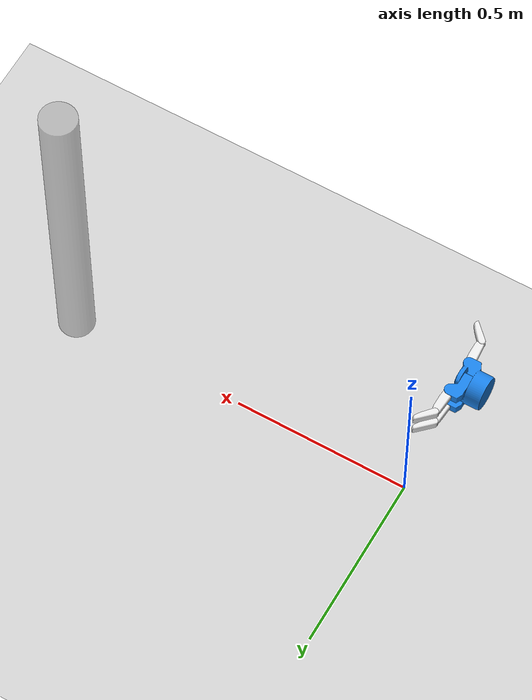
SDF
<?xml version="1.0"?>
<sdf version='1.6'>
  <world name='cylinder'>
    <gravity>0 0 -9.8</gravity>
    <physics type="ode">
      <max_contacts>40</max_contacts>
      <max_step_size>0.001</max_step_size>
      <real_time_factor>0.0</real_time_factor>
      <ode>
        <solver>
          <type>quick</type>
          <iters>40</iters>
          <sor>1.2</sor>
        </solver>
        <constraints>
          <cfm>0</cfm>
          <erp>0.2</erp>
          <contact_max_correcting_vel>1000</contact_max_correcting_vel>
          <contact_surface_layer>0.0</contact_surface_layer>
        </constraints>
      </ode>
    </physics>

    <include>
      <uri>model://ground_plane</uri>
    </include>

    <include>
      <uri>model://sun</uri>
    </include>

    <include>
      <uri>model://barrett</uri>
      <pose>-0.2 0 0.7 0 1.57079632679 0</pose>
    </include>

    <include>
      <uri>model://cylinder</uri>
      <pose>1 0 0.5 0 0 0</pose>
    </include>

    <plugin name="world_plugin" filename="libworld_plugin.so"/>
  </world>
</sdf>

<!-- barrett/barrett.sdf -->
<sdf version='1.6'>
  <model name='barrett'>
    <link name='palm_link'>
      <kinematic>true</kinematic>
      <pose frame=''>0 0 0 0 -0 -3.14159</pose>
      <inertial>
        <pose frame=''>-5.1e-05 0.005043 0.036674 0 -0 0</pose>
        <mass>0.50575</mass>
        <inertia>
          <ixx>4.04627e-05</ixx>
          <ixy>-5.60348e-08</ixy>
          <ixz>-4.20341e-05</ixz>
          <iyy>0.000226138</iyy>
          <iyz>1.39217e-07</iyz>
          <izz>0.000202451</izz>
        </inertia>
      </inertial>
      <collision name='palm_link_collision'>
        <pose frame=''>0 0 0 0 -0 0</pose>
        <geometry>
          <mesh>
            <scale>1 1 1</scale>
            <uri>model://barrett/mesh/palm_convex.dae</uri>
          </mesh>
        </geometry>
        <surface>
          <contact>
            <ode>
              <kp>1000000</kp>
              <kd>100</kd>
            </ode>
          </contact>
          <friction>
            <ode>
              <mu>0.5</mu>
              <mu2>0.5</mu2>
            </ode>
          </friction>
        </surface>
      </collision>
      <visual name='palm_link_visual'>
        <pose frame=''>0 0 0 0 -0 0</pose>
        <geometry>
          <mesh>
            <scale>1 1 1</scale>
            <uri>model://barrett/mesh/palm_fine.stl</uri>
          </mesh>
        </geometry>
        <material>
          <ambient>0.3 0.3 0.3 1</ambient>
          <diffuse>0.1 0.5 0.9 1</diffuse>
          <specular>0.5 0.5 0.5 1</specular>
          <script>
            <uri>__default__</uri>
            <name>__default__</name>
          </script>
        </material>
      </visual>
      <gravity>0</gravity>
      <self_collide>0</self_collide>
    </link>
    <link name='finger_1_prox_link'>
      <pose frame=''>0.025 0 0.0415 0 -0 1.5708</pose>
      <inertial>
        <pose frame=''>0.023133 0.000786 0.000528 0 -0 0</pose>
        <mass>0.14109</mass>
        <inertia>
          <ixx>4.872e-06</ixx>
          <ixy>1.7103e-06</ixy>
          <ixz>3.4041e-08</ixz>
          <iyy>7.6588e-05</iyy>
          <iyz>2.3133e-08</iyz>
          <izz>7.7733e-05</izz>
        </inertia>
      </inertial>
      <collision name='finger_1_prox_link_collision'>
        <pose frame=''>0 0 0 0 -0 0</pose>
        <geometry>
          <mesh>
            <scale>1 1 1</scale>
            <uri>model://barrett/mesh/finger_prox_link_convex.dae</uri>
          </mesh>
        </geometry>
        <surface>
          <contact>
            <ode>
              <kp>1000000</kp>
              <kd>100</kd>
            </ode>
          </contact>
          <friction>
            <ode>
              <mu>0.5</mu>
              <mu2>0.5</mu2>
            </ode>
          </friction>
        </surface>
      </collision>
      <visual name='finger_1_prox_link_visual'>
        <pose frame=''>0 0 0 0 -0 0</pose>
        <geometry>
          <mesh>
            <scale>1 1 1</scale>
            <uri>model://barrett/mesh/finger_prox_link_fine.stl</uri>
          </mesh>
        </geometry>
        <material>
          <ambient>0.3 0.3 0.3 1</ambient>
          <diffuse>0.1 0.5 0.9 1</diffuse>
          <specular>0.5 0.5 0.5 1</specular>
          <script>
            <uri>__default__</uri>
            <name>__default__</name>
          </script>
        </material>
      </visual>
      <gravity>0</gravity>
      <self_collide>1</self_collide>
    </link>
    <joint name='finger_1_prox_joint' type='revolute'>
      <child>finger_1_prox_link</child>
      <parent>palm_link</parent>
      <axis>
        <xyz>0 0 -1</xyz>
        <limit>
          <lower>0</lower>
          <upper>3.14159</upper>
          <effort>5</effort>
          <velocity>10</velocity>
        </limit>
        <dynamics>
          <damping>0.35</damping>
          <friction>0</friction>
          <spring_reference>0</spring_reference>
          <spring_stiffness>0</spring_stiffness>
        </dynamics>
        <use_parent_model_frame>1</use_parent_model_frame>
      </axis>
      <physics>
        <ode>
          <provide_feedback>0</provide_feedback>
          <implicit_spring_damper>1</implicit_spring_damper>
          <cfm_damping>1</cfm_damping>
          <limit>
            <cfm>0</cfm>
            <erp>0.2</erp>
          </limit>
        </ode>
      </physics>
    </joint>
    <link name='finger_1_med_link'>
      <pose frame=''>0.025 0.05 0.0754 1.5708 -0 1.5708</pose>
      <inertial>
        <pose frame=''>0.023133 0.000786 0.000528 0 -0 0</pose>
        <mass>0.062139</mass>
        <inertia>
          <ixx>4.872e-06</ixx>
          <ixy>1.7103e-06</ixy>
          <ixz>3.4041e-08</ixz>
          <iyy>7.6588e-05</iyy>
          <iyz>2.3133e-08</iyz>
          <izz>7.7733e-05</izz>
        </inertia>
      </inertial>
      <collision name='finger_1_med_link_collision'>
        <pose frame=''>0 0 0 0 -0 0</pose>
        <geometry>
          <mesh>
            <scale>1 1 1</scale>
            <uri>model://barrett/mesh/finger_med_link_convex.dae</uri>
          </mesh>
        </geometry>
        <surface>
          <contact>
            <ode>
              <kp>1000000</kp>
              <kd>100</kd>
            </ode>
          </contact>
          <friction>
            <ode>
              <mu>0.5</mu>
              <mu2>0.5</mu2>
            </ode>
          </friction>
        </surface>
      </collision>
      <visual name='finger_1_med_link_visual'>
        <pose frame=''>0 0 0 0 -0 0</pose>
        <geometry>
          <mesh>
            <scale>1 1 1</scale>
            <uri>model://barrett/mesh/finger_med_link_fine.stl</uri>
          </mesh>
        </geometry>
        <material>
          <ambient>0.7 0.7 0.7 1</ambient>
          <diffuse>0.9 0.9 0.9 1</diffuse>
          <specular>0.5 0.5 0.5 0.3</specular>
          <emissive>0 0 0 0</emissive>
          <script>
            <uri>__default__</uri>
            <name>__default__</name>
          </script>
        </material>
      </visual>
      <gravity>0</gravity>
      <self_collide>1</self_collide>
    </link>
    <joint name='finger_1_med_joint' type='revolute'>
      <child>finger_1_med_link</child>
      <parent>finger_1_prox_link</parent>
      <axis>
        <xyz>1 0 0</xyz>
        <limit>
          <lower>0</lower>
          <upper>2.44346</upper>
          <effort>30</effort>
          <velocity>10</velocity>
        </limit>
        <dynamics>
          <damping>0.35</damping>
          <friction>0</friction>
          <spring_reference>0</spring_reference>
          <spring_stiffness>0</spring_stiffness>
        </dynamics>
        <use_parent_model_frame>1</use_parent_model_frame>
      </axis>
      <physics>
        <ode>
          <provide_feedback>0</provide_feedback>
          <implicit_spring_damper>1</implicit_spring_damper>
          <cfm_damping>1</cfm_damping>
          <limit>
            <cfm>0</cfm>
            <erp>0.2</erp>
          </limit>
        </ode>
      </physics>
    </joint>
    <link name='finger_1_dist_link'>
      <pose frame=''>0.025 0.11994 0.0784 1.5708 -0.785398 1.5708</pose>
      <inertial>
        <pose frame=''>0.022826 0.001049 0.00042 0 -0 0</pose>
        <mass>0.041378</mass>
        <inertia>
          <ixx>4.1582e-06</ixx>
          <ixy>1.43083e-06</ixy>
          <ixz>1.01071e-07</ixz>
          <iyy>3.93767e-05</iyy>
          <iyz>-4.40926e-13</iyz>
          <izz>3.82757e-05</izz>
        </inertia>
      </inertial>
      <collision name='finger_1_dist_link_collision'>
        <pose frame=''>0 0 0 0 0 -0.785398</pose>
        <geometry>
          <mesh>
            <scale>1 1 1</scale>
            <uri>model://barrett/mesh/finger_dist_link_convex.dae</uri>
          </mesh>
        </geometry>
        <surface>
          <contact>
            <ode>
              <kp>1000000</kp>
              <kd>100</kd>
            </ode>
          </contact>
          <friction>
            <ode>
              <mu>0.5</mu>
              <mu2>0.5</mu2>
            </ode>
          </friction>
        </surface>
      </collision>
      <visual name='finger_1_dist_link_visual'>
        <pose frame=''>0 0 0 0 0 -0.785398</pose>
        <geometry>
          <mesh>
            <scale>1 1 1</scale>
            <uri>model://barrett/mesh/finger_dist_link_fine.stl</uri>
          </mesh>
        </geometry>
        <material>
          <ambient>0.7 0.7 0.7 1</ambient>
          <diffuse>0.9 0.9 0.9 1</diffuse>
          <specular>0.5 0.5 0.5 0.3</specular>
          <emissive>0 0 0 0</emissive>
          <script>
            <uri>__default__</uri>
            <name>__default__</name>
          </script>
        </material>
      </visual>
      <gravity>0</gravity>
      <self_collide>1</self_collide>
    </link>
    <joint name='finger_1_dist_joint' type='revolute'>
      <child>finger_1_dist_link</child>
      <parent>finger_1_med_link</parent>
      <axis>
        <xyz>1 0 0</xyz>
        <limit>
          <lower>0</lower>
          <upper>0.837758</upper>
          <effort>30</effort>
          <velocity>10</velocity>
        </limit>
        <dynamics>
          <damping>0.35</damping>
          <friction>1</friction>
          <spring_reference>0</spring_reference>
          <spring_stiffness>0</spring_stiffness>
        </dynamics>
        <use_parent_model_frame>1</use_parent_model_frame>
      </axis>
      <physics>
        <ode>
          <provide_feedback>0</provide_feedback>
          <implicit_spring_damper>1</implicit_spring_damper>
          <cfm_damping>1</cfm_damping>
          <limit>
            <cfm>0</cfm>
            <erp>0.2</erp>
          </limit>
        </ode>
      </physics>
    </joint>
    <link name='finger_2_prox_link'>
      <pose frame=''>-0.025 -0 0.0415 0 -0 1.5708</pose>
      <inertial>
        <pose frame=''>0.023133 0.000786 0.000528 0 -0 0</pose>
        <mass>0.14109</mass>
        <inertia>
          <ixx>4.872e-06</ixx>
          <ixy>1.7103e-06</ixy>
          <ixz>3.4041e-08</ixz>
          <iyy>7.6588e-05</iyy>
          <iyz>2.3133e-08</iyz>
          <izz>7.7733e-05</izz>
        </inertia>
      </inertial>
      <collision name='finger_2_prox_link_collision'>
        <pose frame=''>0 0 0 0 -0 0</pose>
        <geometry>
          <mesh>
            <scale>1 1 1</scale>
            <uri>model://barrett/mesh/finger_prox_link_convex.dae</uri>
          </mesh>
        </geometry>
        <surface>
          <contact>
            <ode>
              <kp>1000000</kp>
              <kd>100</kd>
            </ode>
          </contact>
          <friction>
            <ode>
              <mu>0.5</mu>
              <mu2>0.5</mu2>
            </ode>
          </friction>
        </surface>
      </collision>
      <visual name='finger_2_prox_link_visual'>
        <pose frame=''>0 0 0 0 -0 0</pose>
        <geometry>
          <mesh>
            <scale>1 1 1</scale>
            <uri>model://barrett/mesh/finger_prox_link_fine.stl</uri>
          </mesh>
        </geometry>
        <material>
          <ambient>0.3 0.3 0.3 1</ambient>
          <diffuse>0.1 0.5 0.9 1</diffuse>
          <specular>0.5 0.5 0.5 1</specular>
          <script>
            <uri>__default__</uri>
            <name>__default__</name>
          </script>
        </material>
      </visual>
      <gravity>0</gravity>
      <self_collide>1</self_collide>
    </link>
    <joint name='finger_2_prox_joint' type='revolute'>
      <child>finger_2_prox_link</child>
      <parent>palm_link</parent>
      <axis>
        <xyz>0 0 1</xyz>
        <limit>
          <lower>0</lower>
          <upper>3.14159</upper>
          <effort>5</effort>
          <velocity>10</velocity>
        </limit>
        <dynamics>
          <damping>0.35</damping>
          <friction>0</friction>
          <spring_reference>0</spring_reference>
          <spring_stiffness>0</spring_stiffness>
        </dynamics>
        <use_parent_model_frame>1</use_parent_model_frame>
      </axis>
      <physics>
        <ode>
          <provide_feedback>0</provide_feedback>
          <implicit_spring_damper>1</implicit_spring_damper>
          <cfm_damping>1</cfm_damping>
          <limit>
            <cfm>0</cfm>
            <erp>0.2</erp>
          </limit>
        </ode>
      </physics>
    </joint>
    <link name='finger_2_med_link'>
      <pose frame=''>-0.025 0.05 0.0754 1.5708 -0 1.5708</pose>
      <inertial>
        <pose frame=''>0.023133 0.000786 0.000528 0 -0 0</pose>
        <mass>0.062139</mass>
        <inertia>
          <ixx>4.872e-06</ixx>
          <ixy>1.7103e-06</ixy>
          <ixz>3.4041e-08</ixz>
          <iyy>7.6588e-05</iyy>
          <iyz>2.3133e-08</iyz>
          <izz>7.7733e-05</izz>
        </inertia>
      </inertial>
      <collision name='finger_2_med_link_collision'>
        <pose frame=''>0 0 0 0 -0 0</pose>
        <geometry>
          <mesh>
            <scale>1 1 1</scale>
            <uri>model://barrett/mesh/finger_med_link_convex.dae</uri>
          </mesh>
        </geometry>
        <surface>
          <contact>
            <ode>
              <kp>1000000</kp>
              <kd>100</kd>
            </ode>
          </contact>
          <friction>
            <ode>
              <mu>0.5</mu>
              <mu2>0.5</mu2>
            </ode>
          </friction>
        </surface>
      </collision>
      <visual name='finger_2_med_link_visual'>
        <pose frame=''>0 0 0 0 -0 0</pose>
        <geometry>
          <mesh>
            <scale>1 1 1</scale>
            <uri>model://barrett/mesh/finger_med_link_fine.stl</uri>
          </mesh>
        </geometry>
        <material>
          <ambient>0.7 0.7 0.7 1</ambient>
          <diffuse>0.9 0.9 0.9 1</diffuse>
          <specular>0.5 0.5 0.5 0.3</specular>
          <emissive>0 0 0 0</emissive>
          <script>
            <uri>__default__</uri>
            <name>__default__</name>
          </script>
        </material>
      </visual>
      <gravity>0</gravity>
      <self_collide>1</self_collide>
    </link>
    <joint name='finger_2_med_joint' type='revolute'>
      <child>finger_2_med_link</child>
      <parent>finger_2_prox_link</parent>
      <axis>
        <xyz>1 0 0</xyz>
        <limit>
          <lower>0</lower>
          <upper>2.44346</upper>
          <effort>30</effort>
          <velocity>10</velocity>
        </limit>
        <dynamics>
          <damping>0.35</damping>
          <friction>0</friction>
          <spring_reference>0</spring_reference>
          <spring_stiffness>0</spring_stiffness>
        </dynamics>
        <use_parent_model_frame>1</use_parent_model_frame>
      </axis>
      <physics>
        <ode>
          <provide_feedback>0</provide_feedback>
          <implicit_spring_damper>1</implicit_spring_damper>
          <cfm_damping>1</cfm_damping>
          <limit>
            <cfm>0</cfm>
            <erp>0.2</erp>
          </limit>
        </ode>
      </physics>
    </joint>
    <link name='finger_2_dist_link'>
      <pose frame=''>-0.025 0.11994 0.0784 1.5708 -0.785398 1.5708</pose>
      <inertial>
        <pose frame=''>0.022826 0.001049 0.00042 0 -0 0</pose>
        <mass>0.041378</mass>
        <inertia>
          <ixx>4.1582e-06</ixx>
          <ixy>1.43083e-06</ixy>
          <ixz>1.01071e-07</ixz>
          <iyy>3.93767e-05</iyy>
          <iyz>-4.40926e-13</iyz>
          <izz>3.82757e-05</izz>
        </inertia>
      </inertial>
      <collision name='finger_2_dist_link_collision'>
        <pose frame=''>0 0 0 0 0 -0.785398</pose>
        <geometry>
          <mesh>
            <scale>1 1 1</scale>
            <uri>model://barrett/mesh/finger_dist_link_convex.dae</uri>
          </mesh>
        </geometry>
        <surface>
          <contact>
            <ode>
              <kp>1000000</kp>
              <kd>100</kd>
            </ode>
          </contact>
          <friction>
            <ode>
              <mu>0.5</mu>
              <mu2>0.5</mu2>
            </ode>
          </friction>
        </surface>
      </collision>
      <visual name='finger_2_dist_link_visual'>
        <pose frame=''>0 0 0 0 0 -0.785398</pose>
        <geometry>
          <mesh>
            <scale>1 1 1</scale>
            <uri>model://barrett/mesh/finger_dist_link_fine.stl</uri>
          </mesh>
        </geometry>
        <material>
          <ambient>0.7 0.7 0.7 1</ambient>
          <diffuse>0.9 0.9 0.9 1</diffuse>
          <specular>0.5 0.5 0.5 0.3</specular>
          <emissive>0 0 0 0</emissive>
          <script>
            <uri>__default__</uri>
            <name>__default__</name>
          </script>
        </material>
      </visual>
      <gravity>0</gravity>
      <self_collide>1</self_collide>
    </link>
    <joint name='finger_2_dist_joint' type='revolute'>
      <child>finger_2_dist_link</child>
      <parent>finger_2_med_link</parent>
      <axis>
        <xyz>1 0 0</xyz>
        <limit>
          <lower>0</lower>
          <upper>0.837758</upper>
          <effort>30</effort>
          <velocity>10</velocity>
        </limit>
        <dynamics>
          <damping>0.35</damping>
          <friction>1</friction>
          <spring_reference>0</spring_reference>
          <spring_stiffness>0</spring_stiffness>
        </dynamics>
        <use_parent_model_frame>1</use_parent_model_frame>
      </axis>
      <physics>
        <ode>
          <provide_feedback>0</provide_feedback>
          <implicit_spring_damper>1</implicit_spring_damper>
          <cfm_damping>1</cfm_damping>
          <limit>
            <cfm>0</cfm>
            <erp>0.2</erp>
          </limit>
        </ode>
      </physics>
    </joint>
    <link name='finger_3_med_link'>
      <pose frame=''>0 -0.05 0.0754 1.5708 -0 -1.5708</pose>
      <inertial>
        <pose frame=''>0.023133 0.000786 0.000528 0 -0 0</pose>
        <mass>0.062139</mass>
        <inertia>
          <ixx>4.872e-06</ixx>
          <ixy>1.7103e-06</ixy>
          <ixz>3.4041e-08</ixz>
          <iyy>7.6588e-05</iyy>
          <iyz>2.3133e-08</iyz>
          <izz>7.7733e-05</izz>
        </inertia>
      </inertial>
      <collision name='finger_3_med_link_collision'>
        <pose frame=''>0 0 0 0 -0 0</pose>
        <geometry>
          <mesh>
            <scale>1 1 1</scale>
            <uri>model://barrett/mesh/finger_med_link_convex.dae</uri>
          </mesh>
        </geometry>
        <surface>
          <contact>
            <ode>
              <kp>1000000</kp>
              <kd>100</kd>
            </ode>
          </contact>
          <friction>
            <ode>
              <mu>0.5</mu>
              <mu2>0.5</mu2>
            </ode>
          </friction>
        </surface>
      </collision>
      <visual name='finger_3_med_link_visual'>
        <pose frame=''>0 0 0 0 -0 0</pose>
        <geometry>
          <mesh>
            <scale>1 1 1</scale>
            <uri>model://barrett/mesh/finger_med_link_fine.stl</uri>
          </mesh>
        </geometry>
        <material>
          <ambient>0.7 0.7 0.7 1</ambient>
          <diffuse>0.9 0.9 0.9 1</diffuse>
          <specular>0.5 0.5 0.5 0.3</specular>
          <emissive>0 0 0 0</emissive>
          <script>
            <uri>__default__</uri>
            <name>__default__</name>
          </script>
        </material>
      </visual>
      <gravity>0</gravity>
      <self_collide>1</self_collide>
    </link>
    <joint name='finger_3_med_joint' type='revolute'>
      <child>finger_3_med_link</child>
      <parent>palm_link</parent>
      <axis>
        <xyz>-1 0 0</xyz>
        <limit>
          <lower>0</lower>
          <upper>2.44346</upper>
          <effort>30</effort>
          <velocity>10</velocity>
        </limit>
        <dynamics>
          <damping>0.35</damping>
          <friction>0</friction>
          <spring_reference>0</spring_reference>
          <spring_stiffness>0</spring_stiffness>
        </dynamics>
        <use_parent_model_frame>1</use_parent_model_frame>
      </axis>
      <physics>
        <ode>
          <provide_feedback>0</provide_feedback>
          <implicit_spring_damper>1</implicit_spring_damper>
          <cfm_damping>1</cfm_damping>
          <limit>
            <cfm>0</cfm>
            <erp>0.2</erp>
          </limit>
        </ode>
      </physics>
    </joint>
    <link name='finger_3_dist_link'>
      <pose frame=''>-0 -0.11994 0.0784 1.5708 -0.785398 -1.5708</pose>
      <inertial>
        <pose frame=''>0.022826 0.001049 0.00042 0 -0 0</pose>
        <mass>0.041378</mass>
        <inertia>
          <ixx>4.1582e-06</ixx>
          <ixy>1.43083e-06</ixy>
          <ixz>1.01071e-07</ixz>
          <iyy>3.93767e-05</iyy>
          <iyz>-4.40926e-13</iyz>
          <izz>3.82757e-05</izz>
        </inertia>
      </inertial>
      <collision name='finger_3_dist_link_collision'>
        <pose frame=''>0 0 0 0 0 -0.785398</pose>
        <geometry>
          <mesh>
            <scale>1 1 1</scale>
            <uri>model://barrett/mesh/finger_dist_link_convex.dae</uri>
          </mesh>
        </geometry>
        <surface>
          <contact>
            <ode>
              <kp>1000000</kp>
              <kd>100</kd>
            </ode>
          </contact>
          <friction>
            <ode>
              <mu>0.5</mu>
              <mu2>0.5</mu2>
            </ode>
          </friction>
        </surface>
      </collision>
      <visual name='finger_3_dist_link_visual'>
        <pose frame=''>0 0 0 0 0 -0.785398</pose>
        <geometry>
          <mesh>
            <scale>1 1 1</scale>
            <uri>model://barrett/mesh/finger_dist_link_fine.stl</uri>
          </mesh>
        </geometry>
        <material>
          <ambient>0.7 0.7 0.7 1</ambient>
          <diffuse>0.9 0.9 0.9 1</diffuse>
          <specular>0.5 0.5 0.5 0.3</specular>
          <emissive>0 0 0 0</emissive>
          <script>
            <uri>__default__</uri>
            <name>__default__</name>
          </script>
        </material>
      </visual>
      <gravity>0</gravity>
      <self_collide>1</self_collide>
    </link>
    <joint name='finger_3_dist_joint' type='revolute'>
      <child>finger_3_dist_link</child>
      <parent>finger_3_med_link</parent>
      <axis>
        <xyz>-1 0 0</xyz>
        <limit>
          <lower>0</lower>
          <upper>0.837758</upper>
          <effort>30</effort>
          <velocity>10</velocity>
        </limit>
        <dynamics>
          <damping>0.35</damping>
          <friction>1</friction>
          <spring_reference>0</spring_reference>
          <spring_stiffness>0</spring_stiffness>
        </dynamics>
        <use_parent_model_frame>1</use_parent_model_frame>
      </axis>
      <physics>
        <ode>
          <provide_feedback>0</provide_feedback>
          <implicit_spring_damper>1</implicit_spring_damper>
          <cfm_damping>1</cfm_damping>
          <limit>
            <cfm>0</cfm>
            <erp>0.2</erp>
          </limit>
        </ode>
      </physics>
    </joint>
    <static>0</static>
  </model>
</sdf>

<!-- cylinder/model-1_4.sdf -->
<sdf version='1.4'>
  <model name='object'>
    <pose frame=''>0 0 0 0 0 0</pose>
    <link name='link'>
      <inertial>
        <mass>1</mass>
        <inertia>
          <ixx>0.083958</ixx>
          <ixy>0</ixy>
          <ixz>0</ixz>
          <iyy>0.083958</iyy>
          <iyz>0</iyz>
          <izz>0.00125</izz>
        </inertia>
      </inertial>
      <collision name='c_cyl'>
        <geometry>
          <mesh>
            <scale>1 1 1</scale>
            <uri>model://cylinder/mesh/cylinder.dae</uri>
          </mesh>
        </geometry>
        <surface>
          <contact>
            <ode>
              <kp>1000000</kp>
              <kd>100</kd>
              <max_vel>1000.0</max_vel>
              <min_depth>0.0</min_depth>
            </ode>
          </contact>
        </surface>
      </collision>
      <visual name='v_cyl'>
        <geometry>
          <mesh>
            <scale>1 1 1</scale>
            <uri>model://cylinder/mesh/cylinder.dae</uri>
          </mesh>
        </geometry>
        <material>
          <script>
            <name>Gazebo/GreyTransparent</name>
            <uri>file://media/materials/scripts/gazebo.material</uri>
          </script>
        </material>
      </visual>
    </link>
  </model>
</sdf>
